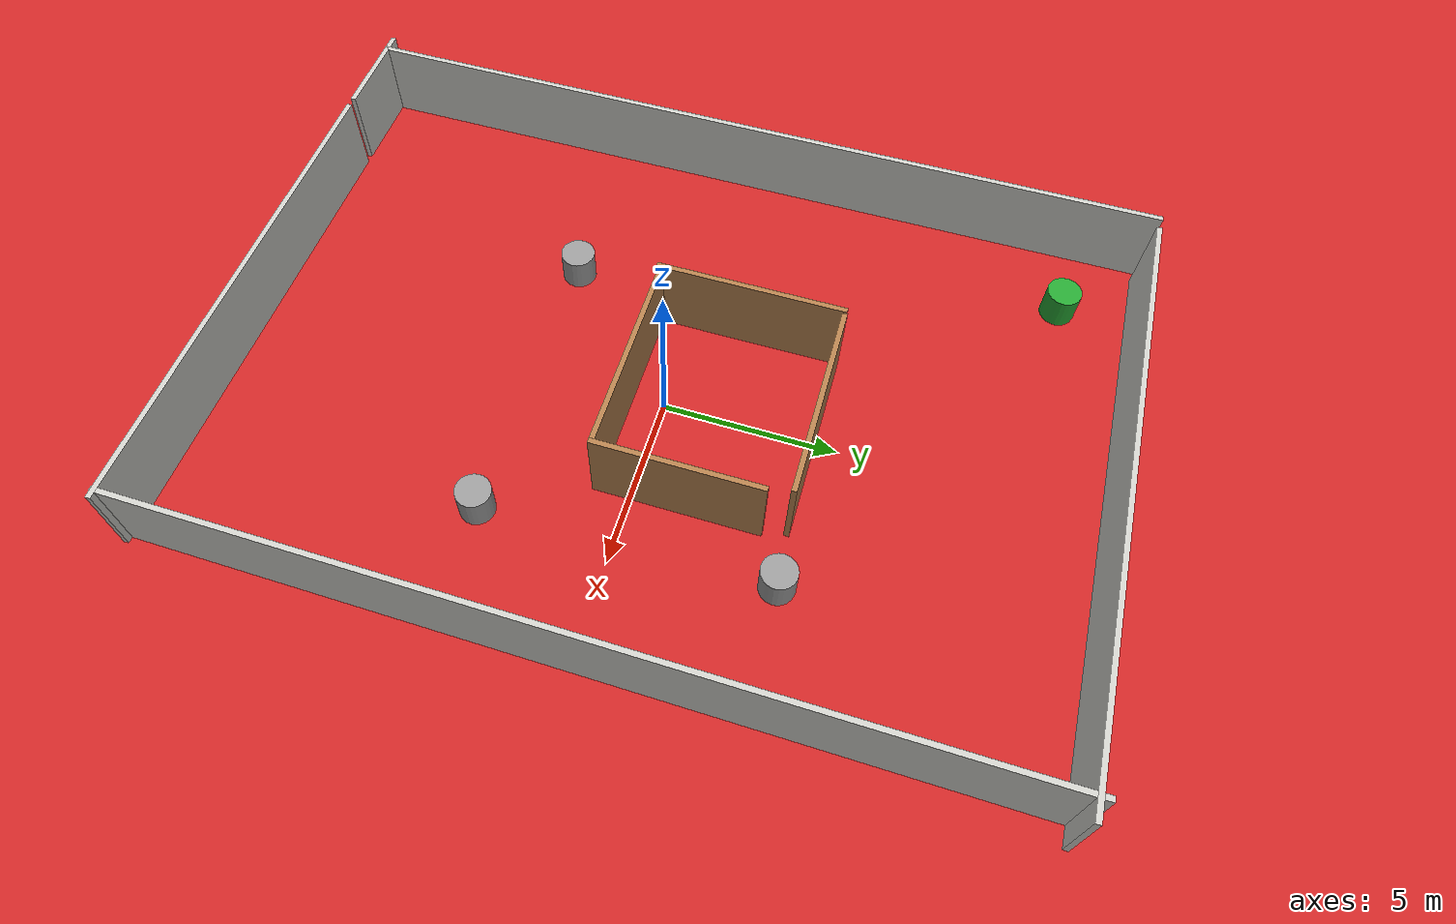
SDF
<sdf version="1.7">
 <world name="default">
  <light name="sun" type="directional">
   <pose>0 0 10 0 -0 0</pose>
   <diffuse>0.8 0.8 0.8 1</diffuse>
   <specular>0.2 0.2 0.2 1</specular>
   <attenuation>
    <range>1000</range>
    <constant>0.9</constant>
    <linear>0.01</linear>
    <quadratic>0.001</quadratic>
   </attenuation>
   <direction>-0.5 0.1 -0.9</direction>
   <spot><inner_angle>0</inner_angle><outer_angle>0</outer_angle><falloff>0</falloff></spot>
  </light>
  <model name="ground_plane">
   <static>1</static>
   <link name="link">
    <collision name="collision">
     <geometry><plane><normal>0 0 1</normal><size>100 100</size></plane></geometry>
     <surface>
      <contact><collide_bitmask>65535</collide_bitmask></contact>
      <friction><ode><mu>100</mu><mu2>50</mu2></ode></friction>
     </surface>
    </collision>
    <visual name="visual">
     <cast_shadows>0</cast_shadows>
     <geometry><plane><normal>0 0 1</normal><size>100 100</size></plane></geometry>
     <material>
      <script><uri>file://media/materials/scripts/gazebo.material</uri><name>Gazebo/Red</name></script>
     </material>
    </visual>
   </link>
  </model>
  <gravity>0 0 -9.8</gravity>
  <magnetic_field>6e-06 2.3e-05 -4.2e-05</magnetic_field>
  <atmosphere type="adiabatic"/>
  <physics type="ode">
   <max_step_size>0.001</max_step_size>
   <real_time_factor>1</real_time_factor>
   <real_time_update_rate>1000</real_time_update_rate>
  </physics>
  <scene><ambient>0.4 0.4 0.4 1</ambient><background>0.7 0.7 0.7 1</background><shadows>1</shadows></scene>
  <spherical_coordinates>
   <surface_model>EARTH_WGS84</surface_model>
   <latitude_deg>0</latitude_deg>
   <longitude_deg>0</longitude_deg>
   <elevation>0</elevation>
   <heading_deg>0</heading_deg>
  </spherical_coordinates>
  <model name="Untitled">
   <pose>-128904 -55039.7 0 0 -0 0</pose>
   <link name="Wall_0">
    <collision name="Wall_0_Collision">
     <geometry><box><size>24.5 0.15 2.5</size></box></geometry>
     <pose>0 0 1.25 0 -0 0</pose>
    </collision>
    <visual name="Wall_0_Visual">
     <pose>0 0 1.25 0 -0 0</pose>
     <geometry><box><size>24.5 0.15 2.5</size></box></geometry>
     <material>
      <script><uri>file://media/materials/scripts/gazebo.material</uri><name>Gazebo/Grey</name></script>
      <ambient>1 1 1 1</ambient>
     </material>
     <meta><layer>0</layer></meta>
    </visual>
    <pose>128240 55247.2 0 0 -0 -2.0944</pose>
   </link>
   <link name="Wall_14">
    <collision name="Wall_14_Collision">
     <geometry><box><size>634358 0.15 2.5</size></box></geometry>
     <pose>0 0 1.25 0 -0 0</pose>
    </collision>
    <visual name="Wall_14_Visual">
     <pose>0 0 1.25 0 -0 0</pose>
     <geometry><box><size>634358 0.15 2.5</size></box></geometry>
     <material>
      <script><uri>file://media/materials/scripts/gazebo.material</uri><name>Gazebo/Grey</name></script>
      <ambient>1 1 1 1</ambient>
     </material>
     <meta><layer>0</layer></meta>
    </visual>
    <pose>-593983 -0.007813 0 0 -0 -1.5708</pose>
   </link>
   <link name="Wall_15">
    <collision name="Wall_15_Collision">
     <geometry><box><size>514882 0.15 2.5</size></box></geometry>
     <pose>0 0 1.25 0 -0 0</pose>
    </collision>
    <visual name="Wall_15_Visual">
     <pose>0 0 1.25 0 -0 0</pose>
     <geometry><box><size>514882 0.15 2.5</size></box></geometry>
     <material>
      <script><uri>file://media/materials/scripts/gazebo.material</uri><name>Gazebo/Grey</name></script>
      <ambient>1 1 1 1</ambient>
     </material>
     <meta><layer>0</layer></meta>
    </visual>
    <pose>-465263 -94228.7 0 0 -0 1.0472</pose>
   </link>
   <link name="Wall_16">
    <collision name="Wall_16_Collision">
     <geometry><box><size>930526 0.15 2.5</size></box></geometry>
     <pose>0 0 1.25 0 -0 0</pose>
    </collision>
    <visual name="Wall_16_Visual">
     <pose>0 0 1.25 0 -0 0</pose>
     <geometry><box><size>930526 0.15 2.5</size></box></geometry>
     <material>
      <script><uri>file://media/materials/scripts/gazebo.material</uri><name>Gazebo/Grey</name></script>
      <ambient>1 1 1 1</ambient>
     </material>
     <meta><layer>0</layer></meta>
    </visual>
    <pose>128720 128722 0 0 -0 0</pose>
   </link>
   <link name="Wall_2">
    <collision name="Wall_2_Collision">
     <geometry><box><size>390.5 0.15 2.5</size></box></geometry>
     <pose>0 0 1.25 0 -0 0</pose>
    </collision>
    <visual name="Wall_2_Visual">
     <pose>0 0 1.25 0 -0 0</pose>
     <geometry><box><size>390.5 0.15 2.5</size></box></geometry>
     <material>
      <script><uri>file://media/materials/scripts/gazebo.material</uri><name>Gazebo/Grey</name></script>
      <ambient>1 1 1 1</ambient>
     </material>
     <meta><layer>0</layer></meta>
    </visual>
    <pose>128662 55191.5 0 0 -0 0</pose>
   </link>
   <link name="Wall_20">
    <collision name="Wall_20_Collision">
     <geometry><box><size>25 0.15 2.5</size></box></geometry>
     <pose>0 0 1.25 0 -0 0</pose>
    </collision>
    <visual name="Wall_20_Visual">
     <pose>0 0 1.25 0 -0 0</pose>
     <geometry><box><size>25 0.15 2.5</size></box></geometry>
     <material>
      <script><uri>file://media/materials/scripts/gazebo.material</uri><name>Gazebo/CeilingTiled</name></script>
      <ambient>1 1 1 1</ambient>
     </material>
     <meta><layer>0</layer></meta>
    </visual>
    <pose>128912 55039.8 0 0 -0 -1.5708</pose>
   </link>
   <link name="Wall_21">
    <collision name="Wall_21_Collision">
     <geometry><box><size>14.5 0.15 2.5</size></box></geometry>
     <pose>0 0 1.25 0 -0 0</pose>
    </collision>
    <visual name="Wall_21_Visual">
     <pose>0 0 1.25 0 -0 0</pose>
     <geometry><box><size>14.5 0.15 2.5</size></box></geometry>
     <material>
      <script><uri>file://media/materials/scripts/gazebo.material</uri><name>Gazebo/CeilingTiled</name></script>
      <ambient>1 1 1 1</ambient>
     </material>
     <meta><layer>0</layer></meta>
    </visual>
    <pose>128905 55027.4 0 0 -0 3.14159</pose>
   </link>
   <link name="Wall_22">
    <collision name="Wall_22_Collision">
     <geometry><box><size>3 0.15 2.5</size></box></geometry>
     <pose>0 0 1.25 0 -0 0</pose>
    </collision>
    <visual name="Wall_22_Visual">
     <pose>0 0 1.25 0 -0 0</pose>
     <geometry><box><size>3 0.15 2.5</size></box></geometry>
     <material>
      <script><uri>file://media/materials/scripts/gazebo.material</uri><name>Gazebo/CeilingTiled</name></script>
      <ambient>1 1 1 1</ambient>
     </material>
     <meta><layer>0</layer></meta>
    </visual>
    <pose>128896 55027.4 0 0 -0 3.14159</pose>
   </link>
   <link name="Wall_23">
    <collision name="Wall_23_Collision">
     <geometry><box><size>24.75 0.15 2.5</size></box></geometry>
     <pose>0 0 1.25 0 -0 0</pose>
    </collision>
    <visual name="Wall_23_Visual">
     <pose>0 0 1.25 0 -0 0</pose>
     <geometry><box><size>24.75 0.15 2.5</size></box></geometry>
     <material>
      <script><uri>file://media/materials/scripts/gazebo.material</uri><name>Gazebo/CeilingTiled</name></script>
      <ambient>1 1 1 1</ambient>
     </material>
     <meta><layer>0</layer></meta>
    </visual>
    <pose>128895 55039.7 0 0 -0 1.5708</pose>
   </link>
   <link name="Wall_24">
    <collision name="Wall_24_Collision">
     <geometry><box><size>17.25 0.15 2.5</size></box></geometry>
     <pose>0 0 1.25 0 -0 0</pose>
    </collision>
    <visual name="Wall_24_Visual">
     <pose>0 0 1.25 0 -0 0</pose>
     <geometry><box><size>17.25 0.15 2.5</size></box></geometry>
     <material>
      <script><uri>file://media/materials/scripts/gazebo.material</uri><name>Gazebo/CeilingTiled</name></script>
      <ambient>1 1 1 1</ambient>
     </material>
     <meta><layer>0</layer></meta>
    </visual>
    <pose>128904 55052 0 0 -0 0</pose>
   </link>
   <link name="Wall_26">
    <collision name="Wall_26_Collision">
     <geometry><box><size>5.75 0.15 2.5</size></box></geometry>
     <pose>0 0 1.25 0 -0 0</pose>
    </collision>
    <visual name="Wall_26_Visual">
     <pose>0 0 1.25 0 -0 0</pose>
     <geometry><box><size>5.75 0.15 2.5</size></box></geometry>
     <material>
      <script><uri>file://media/materials/scripts/gazebo.material</uri><name>Gazebo/Wood</name></script>
      <ambient>1 1 1 1</ambient>
     </material>
     <meta><layer>0</layer></meta>
    </visual>
    <pose>128904 55044 0 0 -0 3.14159</pose>
   </link>
   <link name="Wall_27">
    <collision name="Wall_27_Collision">
     <geometry><box><size>5.5 0.15 2.5</size></box></geometry>
     <pose>0 0 1.25 0 -0 0</pose>
    </collision>
    <visual name="Wall_27_Visual">
     <pose>0 0 1.25 0 -0 0</pose>
     <geometry><box><size>5.5 0.15 2.5</size></box></geometry>
     <material>
      <script><uri>file://media/materials/scripts/gazebo.material</uri><name>Gazebo/Wood</name></script>
      <ambient>1 1 1 1</ambient>
     </material>
     <meta><layer>0</layer></meta>
    </visual>
    <pose>128901 55041.3 0 0 -0 -1.5708</pose>
   </link>
   <link name="Wall_28">
    <collision name="Wall_28_Collision">
     <geometry><box><size>6 0.15 2.5</size></box></geometry>
     <pose>0 0 1.25 0 -0 0</pose>
    </collision>
    <visual name="Wall_28_Visual">
     <pose>0 0 1.25 0 -0 0</pose>
     <geometry><box><size>6 0.15 2.5</size></box></geometry>
     <material>
      <script><uri>file://media/materials/scripts/gazebo.material</uri><name>Gazebo/Wood</name></script>
      <ambient>1 1 1 1</ambient>
     </material>
     <meta><layer>0</layer></meta>
    </visual>
    <pose>128904 55038.7 0 0 -0 0</pose>
   </link>
   <link name="Wall_29">
    <collision name="Wall_29_Collision">
     <geometry><box><size>4.75 0.15 2.5</size></box></geometry>
     <pose>0 0 1.25 0 -0 0</pose>
    </collision>
    <visual name="Wall_29_Visual">
     <pose>0 0 1.25 0 -0 0</pose>
     <geometry><box><size>4.75 0.15 2.5</size></box></geometry>
     <material>
      <script><uri>file://media/materials/scripts/gazebo.material</uri><name>Gazebo/Wood</name></script>
      <ambient>1 1 1 1</ambient>
     </material>
     <meta><layer>0</layer></meta>
    </visual>
    <pose>128907 55041 0 0 -0 1.5708</pose>
   </link>
   <static>1</static>
  </model>
  <model name="unit_cylinder">
   <pose>4.54407 -3.82167 0.499993 -3e-06 -3e-06 0</pose>
   <link name="link">
    <inertial>
     <mass>1</mass>
     <inertia><ixx>0.145833</ixx><ixy>0</ixy><ixz>0</ixz><iyy>0.145833</iyy><iyz>0</iyz><izz>0.125</izz></inertia>
    </inertial>
    <collision name="collision">
     <geometry><cylinder><radius>0.5</radius><length>1</length></cylinder></geometry>
    </collision>
    <visual name="visual">
     <geometry><cylinder><radius>0.5</radius><length>1</length></cylinder></geometry>
     <material>
      <script><name>Gazebo/Grey</name><uri>file://media/materials/scripts/gazebo.material</uri></script>
     </material>
    </visual>
   </link>
  </model>
  <model name="unit_cylinder_0">
   <pose>4.36691 4.42981 0.499997 3e-06 4e-06 -0</pose>
   <link name="link">
    <inertial>
     <mass>1</mass>
     <inertia><ixx>0.145833</ixx><ixy>0</ixy><ixz>0</ixz><iyy>0.145833</iyy><iyz>0</iyz><izz>0.125</izz></inertia>
    </inertial>
    <collision name="collision">
     <geometry><cylinder><radius>0.5</radius><length>1</length></cylinder></geometry>
    </collision>
    <visual name="visual">
     <geometry><cylinder><radius>0.5</radius><length>1</length></cylinder></geometry>
     <material>
      <script><name>Gazebo/Grey</name><uri>file://media/materials/scripts/gazebo.material</uri></script>
     </material>
    </visual>
   </link>
  </model>
  <model name="unit_cylinder_1">
   <pose>-3.86224 -3.93571 0.499993 -3e-06 -4e-06 -0</pose>
   <link name="link">
    <inertial>
     <mass>1</mass>
     <inertia><ixx>0.145833</ixx><ixy>0</ixy><ixz>0</ixz><iyy>0.145833</iyy><iyz>0</iyz><izz>0.125</izz></inertia>
    </inertial>
    <collision name="collision">
     <geometry><cylinder><radius>0.5</radius><length>1</length></cylinder></geometry>
    </collision>
    <visual name="visual">
     <geometry><cylinder><radius>0.5</radius><length>1</length></cylinder></geometry>
     <material>
      <script><name>Gazebo/Grey</name><uri>file://media/materials/scripts/gazebo.material</uri></script>
     </material>
    </visual>
   </link>
  </model>
  <model name="unit_cylinder_2">
   <pose>-6.7535 10.2261 0.499997 3e-06 4e-06 -0</pose>
   <link name="link">
    <inertial>
     <mass>1</mass>
     <inertia><ixx>0.145833</ixx><ixy>0</ixy><ixz>0</ixz><iyy>0.145833</iyy><iyz>0</iyz><izz>0.125</izz></inertia>
    </inertial>
    <collision name="collision">
     <geometry><cylinder><radius>0.5</radius><length>1</length></cylinder></geometry>
    </collision>
    <visual name="visual">
     <geometry><cylinder><radius>0.5</radius><length>1</length></cylinder></geometry>
     <material>
      <script><name>Gazebo/Green</name><uri>file://media/materials/scripts/gazebo.material</uri></script>
     </material>
    </visual>
   </link>
  </model>
 </world>
</sdf>
